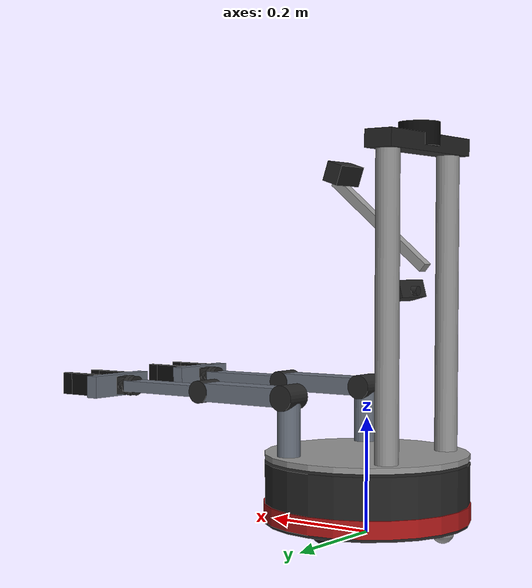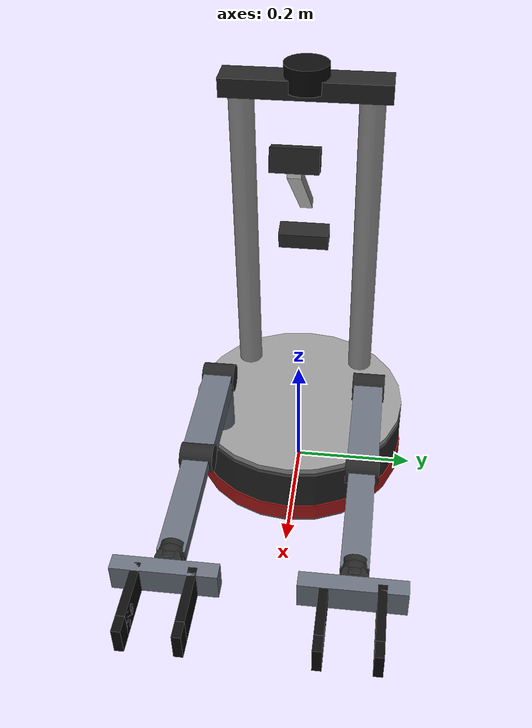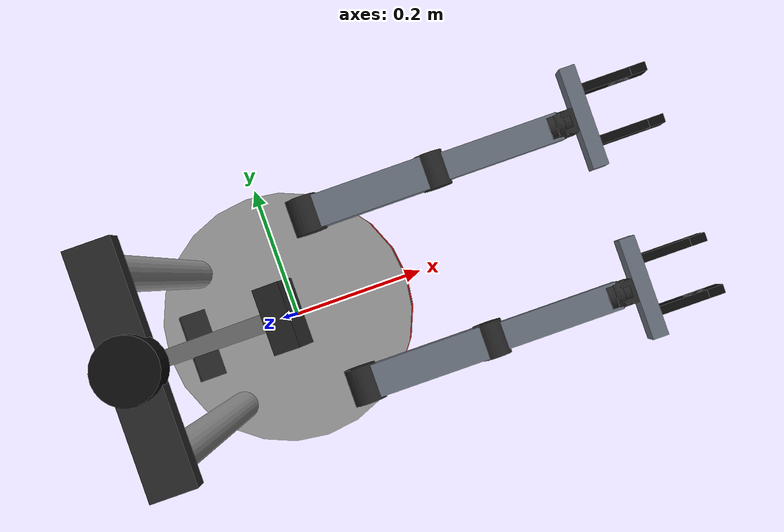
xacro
<?xml version="1.0"?>
<robot name="navigate_bimanual" xmlns:xacro="http://www.ros.org/wiki/xacro">

  <!-- ==================== base ==================== -->
  <xacro:property name="PI"             value="3.14159265358979"/>
  <xacro:property name="base_radius"    value="0.1775"/>
  <xacro:property name="base_body_z0"   value="0.020"/>
  <xacro:property name="base_body_top"  value="0.125"/>
  <xacro:property name="deck_top_z"     value="0.140"/>
  <xacro:property name="wheel_radius"   value="0.038"/>
  <xacro:property name="wheel_width"    value="0.030"/>
  <xacro:property name="wheel_sep"      value="0.230"/>
  <xacro:property name="caster_radius"  value="0.019"/>

  <!-- ==================== arms ==================== -->
  <xacro:property name="arm_mount_x"    value="0.080"/>
  <xacro:property name="arm_mount_y"    value="0.120"/>   <!-- separation 0.24, mount radius 0.144 -->
  <xacro:property name="shoulder_z"     value="0.240"/>
  <xacro:property name="L1"             value="0.180"/>
  <xacro:property name="L2"             value="0.180"/>
  <xacro:property name="LG"             value="0.070"/>   <!-- wrist -> grasp point -->

  <!-- joint limits -->
  <xacro:property name="yaw_lim"        value="2.618"/>   <!-- +/-150 deg -->
  <xacro:property name="pitch2_lim"     value="2.007"/>   <!-- +/-115 deg shoulder -->
  <!-- J2b, the seventh axis. A roll needs a wide range to be useful as a
       swivel; 175 deg keeps a stop short of the wrap so the joint never
       has two equivalent commands. -->
  <xacro:property name="roll2_lim" value="${175*PI/180}"/>
  <xacro:property name="pitch3_lim"     value="2.531"/>   <!-- +/-145 deg ELBOW -->
  <xacro:property name="wpitch_lim"     value="2.443"/>   <!-- +/-140 deg wrist pitch -->
  <xacro:property name="wroll_lim"      value="3.14159"/> <!-- +/-180 deg wrist rolls -->
  <xacro:property name="finger_travel"  value="0.065"/>

  <!-- ==================== sensors ==================== -->
  <xacro:property name="mast_x"         value="-0.100"/>
  <xacro:property name="lidar_z" value="0.68"/>
  <xacro:property name="cam_x"          value="-0.075"/>
  <xacro:property name="cam_z"          value="0.420"/>
  <xacro:property name="cam_pitch"      value="0.2618"/>

  <!-- ==================== materials ==================== -->
  <material name="dark_grey"><color rgba="0.15 0.15 0.15 1"/></material>
  <material name="light_grey"><color rgba="0.6 0.6 0.6 1"/></material>
  <material name="red_accent"><color rgba="0.7 0.1 0.1 1"/></material>
  <material name="arm_blue"><color rgba="0.42 0.45 0.50 1"/></material>
  <material name="black"><color rgba="0.05 0.05 0.05 1"/></material>

  <xacro:include filename="$(find navigate_description)/urdf/base.xacro"/>
  <xacro:include filename="$(find navigate_description)/urdf/mast_sensors.xacro"/>
  <xacro:include filename="$(find navigate_description)/urdf/arm.xacro"/>
  <xacro:include filename="$(find navigate_description)/urdf/ros2_control.xacro"/>
  <xacro:include filename="$(find navigate_description)/urdf/gazebo_plugins.xacro"/>

  <xacro:kobuki_base/>
  <xacro:mast_sensors/>
  <xacro:arm_6dof side="left"  reflect="1"  finger_effort="6.0"/>
  <xacro:arm_6dof side="right" reflect="-1" finger_effort="1.5"/>
  <xacro:bimanual_ros2_control/>
  <xacro:bimanual_gazebo/>

</robot>

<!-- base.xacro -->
<robot xmlns:xacro="http://www.ros.org/wiki/xacro">

  <!-- Simple cylinder inertia helper -->
  <xacro:macro name="cyl_inertial" params="m r h *origin">
    <inertial>
      <xacro:insert_block name="origin"/>
      <mass value="${m}"/>
      <inertia ixx="${m*(3*r*r+h*h)/12}" iyy="${m*(3*r*r+h*h)/12}"
               izz="${m*r*r/2}" ixy="0" ixz="0" iyz="0"/>
    </inertial>
  </xacro:macro>

  <xacro:macro name="box_inertial" params="m x y z *origin">
    <inertial>
      <xacro:insert_block name="origin"/>
      <mass value="${m}"/>
      <inertia ixx="${m*(y*y+z*z)/12}" iyy="${m*(x*x+z*z)/12}"
               izz="${m*(x*x+y*y)/12}" ixy="0" ixz="0" iyz="0"/>
    </inertial>
  </xacro:macro>

  <xacro:macro name="kobuki_base">

    <!-- base_footprint: ground projection; base_link co-located at ground
         level under the base center so all z values read as height AGL -->
    <link name="base_footprint"/>

    <joint name="base_footprint_joint" type="fixed">
      <parent link="base_footprint"/>
      <child link="base_link"/>
      <origin xyz="0 0 0" rpy="0 0 0"/>
    </joint>

    <link name="base_link">
      <visual>
        <origin xyz="0 0 ${(base_body_z0+base_body_top)/2}"/>
        <geometry><cylinder radius="${base_radius}" length="${base_body_top-base_body_z0}"/></geometry>
        <material name="dark_grey"/>
      </visual>
      <!-- red bumper ring, cosmetic kobuki look -->
      <visual>
        <origin xyz="0 0 ${base_body_z0+0.02}"/>
        <geometry><cylinder radius="${base_radius+0.002}" length="0.03"/></geometry>
        <material name="red_accent"/>
      </visual>
      <collision>
        <origin xyz="0 0 ${(base_body_z0+base_body_top)/2}"/>
        <geometry><cylinder radius="${base_radius}" length="${base_body_top-base_body_z0}"/></geometry>
      </collision>
      <xacro:cyl_inertial m="3.2" r="${base_radius}" h="${base_body_top-base_body_z0}">
        <origin xyz="0 0 ${(base_body_z0+base_body_top)/2}"/>
      </xacro:cyl_inertial>
    </link>

    <!-- arm mounting deck (hex on the real robot, cylinder here) -->
    <link name="deck_link">
      <visual>
        <origin xyz="0 0 -0.005"/>
        <geometry><cylinder radius="${base_radius}" length="0.01"/></geometry>
        <material name="light_grey"/>
      </visual>
      <collision>
        <origin xyz="0 0 -0.005"/>
        <geometry><cylinder radius="${base_radius}" length="0.01"/></geometry>
      </collision>
      <xacro:cyl_inertial m="0.4" r="${base_radius}" h="0.01">
        <origin xyz="0 0 -0.005"/>
      </xacro:cyl_inertial>
    </link>
    <joint name="deck_joint" type="fixed">
      <parent link="base_link"/>
      <child link="deck_link"/>
      <origin xyz="0 0 ${deck_top_z}"/>
    </joint>

    <!-- drive wheels -->
    <xacro:macro name="drive_wheel" params="prefix reflect">
      <link name="${prefix}_wheel_link">
        <visual>
          <origin rpy="${-PI/2} 0 0"/>
          <geometry><cylinder radius="${wheel_radius}" length="${wheel_width}"/></geometry>
          <material name="black"/>
        </visual>
        <collision>
          <origin rpy="${-PI/2} 0 0"/>
          <geometry><cylinder radius="${wheel_radius}" length="${wheel_width}"/></geometry>
        </collision>
        <inertial>
          <mass value="0.12"/>
          <inertia ixx="6e-5" iyy="6e-5" izz="9e-5" ixy="0" ixz="0" iyz="0"/>
        </inertial>
      </link>
      <joint name="${prefix}_wheel_joint" type="continuous">
        <parent link="base_link"/>
        <child link="${prefix}_wheel_link"/>
        <origin xyz="0 ${reflect*wheel_sep/2} ${wheel_radius}"/>
        <axis xyz="0 1 0"/>
      </joint>
      <gazebo reference="${prefix}_wheel_link">
        <mu1>1.0</mu1><mu2>1.0</mu2>
      </gazebo>
    </xacro:macro>
    <xacro:drive_wheel prefix="left"  reflect="1"/>
    <xacro:drive_wheel prefix="right" reflect="-1"/>

    <!-- front / rear casters: frictionless spheres -->
    <xacro:macro name="caster" params="prefix x">
      <link name="${prefix}_caster_link">
        <visual>
          <geometry><sphere radius="${caster_radius}"/></geometry>
          <material name="light_grey"/>
        </visual>
        <collision>
          <geometry><sphere radius="${caster_radius}"/></geometry>
        </collision>
        <inertial>
          <mass value="0.02"/>
          <inertia ixx="3e-6" iyy="3e-6" izz="3e-6" ixy="0" ixz="0" iyz="0"/>
        </inertial>
      </link>
      <joint name="${prefix}_caster_joint" type="fixed">
        <parent link="base_link"/>
        <child link="${prefix}_caster_link"/>
        <origin xyz="${x} 0 ${caster_radius}"/>
      </joint>
      <gazebo reference="${prefix}_caster_link">
        <mu1>0.0</mu1><mu2>0.0</mu2>
      </gazebo>
    </xacro:macro>
    <xacro:caster prefix="front" x="0.15"/>
    <xacro:caster prefix="rear"  x="-0.15"/>

  </xacro:macro>
  <gazebo reference="base_footprint">
    <sensor name="base_imu" type="imu">
      <always_on>true</always_on>
      <update_rate>100</update_rate>
      <topic>/imu</topic>
      <imu/>
    </sensor>
  </gazebo>

</robot>

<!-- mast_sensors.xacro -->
<robot xmlns:xacro="http://www.ros.org/wiki/xacro">

  <xacro:macro name="mast_sensors">

    <link name="mast_link">
      <!-- left rod at (-0.099, +0.099): r = sqrt(2)*0.099 = 0.14 m -->
      <visual>
        <origin xyz="0 0.099 ${(lidar_z-0.015-deck_top_z)/2}"/>
        <geometry><cylinder radius="0.020" length="${lidar_z-0.015-deck_top_z}"/></geometry>
        <material name="light_grey"/>
      </visual>
      <!-- right rod at (-0.099, -0.099) -->
      <visual>
        <origin xyz="0 -0.099 ${(lidar_z-0.015-deck_top_z)/2}"/>
        <geometry><cylinder radius="0.020" length="${lidar_z-0.015-deck_top_z}"/></geometry>
        <material name="light_grey"/>
      </visual>
      <!-- crossbar joining the rod tops -->
      <visual>
        <origin xyz="0 0 ${lidar_z-0.015-deck_top_z}"/>
        <geometry><box size="0.05 0.26 0.03"/></geometry>
        <material name="dark_grey"/>
      </visual>
      <!-- camera bracket reaching forward from the crossbar -->
      <visual>
        <origin xyz="${(cam_x-mast_x)/2} 0 ${cam_z-deck_top_z}" rpy="0 1.5708 0"/>
        <geometry><cylinder radius="0.008" length="${cam_x-mast_x}"/></geometry>
        <material name="dark_grey"/>
      </visual>
      <collision>
        <origin xyz="0 0.099 ${(lidar_z-0.015-deck_top_z)/2}"/>
        <geometry><cylinder radius="0.020" length="${lidar_z-0.015-deck_top_z}"/></geometry>
      </collision>
      <collision>
        <origin xyz="0 -0.099 ${(lidar_z-0.015-deck_top_z)/2}"/>
        <geometry><cylinder radius="0.020" length="${lidar_z-0.015-deck_top_z}"/></geometry>
      </collision>
      <collision>
        <origin xyz="0 0 ${lidar_z-0.015-deck_top_z}"/>
        <geometry><box size="0.05 0.26 0.03"/></geometry>
      </collision>
      <inertial>
        <origin xyz="0 0 ${(lidar_z-deck_top_z)/2}"/>
        <mass value="0.45"/>
        <inertia ixx="4e-3" iyy="4e-3" izz="4e-3" ixy="0" ixz="0" iyz="0"/>
      </inertial>
    </link>
    <joint name="mast_joint" type="fixed">
      <parent link="base_link"/>
      <child link="mast_link"/>
      <origin xyz="${mast_x} 0 ${deck_top_z}"/>
    </joint>

    <!-- ============ 2D LiDAR @ 0.46 m ============ -->
    <link name="lidar_link">
      <visual>
        <geometry><cylinder radius="0.035" length="0.04"/></geometry>
        <material name="black"/>
      </visual>
      <collision>
        <geometry><cylinder radius="0.035" length="0.04"/></geometry>
      </collision>
      <inertial>
        <mass value="0.15"/>
        <inertia ixx="1e-4" iyy="1e-4" izz="1e-4" ixy="0" ixz="0" iyz="0"/>
      </inertial>
    </link>
    <joint name="lidar_joint" type="fixed">
      <parent link="base_link"/>
      <child link="lidar_link"/>
      <origin xyz="${mast_x} 0 ${lidar_z}"/>
    </joint>

    <gazebo reference="lidar_link">
      <sensor name="lidar" type="gpu_lidar">
        <topic>scan</topic>
        <gz_frame_id>lidar_link</gz_frame_id>
        <update_rate>10</update_rate>
        <lidar>
          <scan>
            <horizontal>
              <samples>360</samples>
              <resolution>1</resolution>
              <min_angle>${-PI}</min_angle>
              <max_angle>${PI}</max_angle>
            </horizontal>
          </scan>
          <range>
            <min>0.12</min>
            <max>8.0</max>
            <resolution>0.01</resolution>
          </range>
        </lidar>
        <always_on>true</always_on>
        <visualize>false</visualize>
      </sensor>
    </gazebo>

    <!-- ============ RGB camera @ 0.42 m, 15 deg down ============ -->
    <link name="camera_link">
      <visual>
        <geometry><box size="0.03 0.08 0.03"/></geometry>
        <material name="dark_grey"/>
      </visual>
      <collision>
        <geometry><box size="0.03 0.08 0.03"/></geometry>
      </collision>
      <inertial>
        <mass value="0.08"/>
        <inertia ixx="5e-5" iyy="5e-5" izz="5e-5" ixy="0" ixz="0" iyz="0"/>
      </inertial>
    </link>
    <joint name="camera_joint" type="fixed">
      <parent link="base_link"/>
      <child link="camera_link"/>
      <origin xyz="${cam_x} 0 ${cam_z}" rpy="0 ${cam_pitch} 0"/>
    </joint>

    <gazebo reference="camera_link">
      <sensor name="camera" type="camera">
        <topic>camera</topic>
        <gz_frame_id>camera_link</gz_frame_id>
        <update_rate>15</update_rate>
        <camera>
          <camera_info_topic>camera_info</camera_info_topic>
          <horizontal_fov>1.204</horizontal_fov> <!-- 69 deg -->
          <image>
            <width>640</width>
            <height>480</height>
            <format>R8G8B8</format>
          </image>
          <clip><near>0.05</near><far>15.0</far></clip>
        </camera>
        <always_on>true</always_on>
        <visualize>false</visualize>
      </sensor>
    </gazebo>

    <link name="workspace_cam_link">
      <visual>
        <geometry><box size="0.035 0.070 0.030"/></geometry>
        <material name="dark_grey"/>
      </visual>
      <collision><geometry><box size="0.035 0.070 0.030"/></geometry></collision>
      <inertial>
        <mass value="0.08"/>
        <inertia ixx="5e-5" iyy="5e-5" izz="5e-5" ixy="0" ixz="0" iyz="0"/>
      </inertial>
    </link>
    <joint name="workspace_cam_joint" type="fixed">
      <parent link="base_link"/>
      <child link="workspace_cam_link"/>
      <origin xyz="0.05 0 0.62" rpy="0 1.244 0"/>
    </joint>

    <!-- boom holding it out and up from the mast, cosmetic -->
    <link name="cam_boom_link">
      <visual>
        <origin xyz="0.075 0 0.0875" rpy="0 -0.7 0"/>
        <geometry><box size="0.230 0.020 0.016"/></geometry>
        <material name="light_grey"/>
      </visual>
      <inertial>
        <mass value="0.10"/>
        <inertia ixx="1e-4" iyy="1e-4" izz="1e-4" ixy="0" ixz="0" iyz="0"/>
      </inertial>
    </link>
    <joint name="cam_boom_joint" type="fixed">
      <parent link="base_link"/>
      <child link="cam_boom_link"/>
      <origin xyz="-0.10 0 0.445"/>
    </joint>

    <gazebo reference="workspace_cam_link">
      <sensor name="workspace_cam" type="camera">
        <topic>workspace_cam</topic>
        <gz_frame_id>workspace_cam_link</gz_frame_id>
        <update_rate>15</update_rate>
        <camera>
          <camera_info_topic>workspace_cam_info</camera_info_topic>
          <horizontal_fov>1.204</horizontal_fov>
          <image><width>640</width><height>480</height><format>R8G8B8</format></image>
          <clip><near>0.05</near><far>5.0</far></clip>
        </camera>
        <always_on>true</always_on>
        <visualize>false</visualize>
      </sensor>
    </gazebo>

  </xacro:macro>
</robot>

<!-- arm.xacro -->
<robot xmlns:xacro="http://www.ros.org/wiki/xacro">

  <!-- where the suction cup sits along the finger: the object's equator -->
  <xacro:property name="RIDGE_X_CUP" value="0.065"/>

  <xacro:macro name="arm_6dof" params="side reflect finger_effort:=6.0">

    <!-- === J1 yaw + riser === -->
    <link name="${side}_shoulder_link">
      <visual>
        <origin xyz="0 0 0.05"/>
        <geometry><cylinder radius="0.020" length="0.10"/></geometry>
        <material name="arm_blue"/>
      </visual>
      <collision>
        <origin xyz="0 0 0.05"/>
        <geometry><cylinder radius="0.020" length="0.10"/></geometry>
      </collision>
      <xacro:cyl_inertial m="0.16" r="0.020" h="0.10">
        <origin xyz="0 0 0.05"/>
      </xacro:cyl_inertial>
    </link>
    <joint name="${side}_j1" type="revolute">
      <parent link="base_link"/>
      <child link="${side}_shoulder_link"/>
      <origin xyz="${arm_mount_x} ${reflect*arm_mount_y} ${deck_top_z}"/>
      <axis xyz="0 0 1"/>
      <limit lower="${-yaw_lim}" upper="${yaw_lim}" effort="12.0" velocity="3.0"/>
      <dynamics damping="0.7" friction="0.05"/>
    </joint>

    <!-- === J2 shoulder pitch + the pitch yoke === -->
    <link name="${side}_upper_yoke_link">
      <visual>
        <origin xyz="0 0 0" rpy="${PI/2} 0 0"/>
        <geometry><cylinder radius="0.022" length="0.05"/></geometry>
        <material name="dark_grey"/>
      </visual>
      <collision>
        <origin xyz="0 0 0" rpy="${PI/2} 0 0"/>
        <geometry><cylinder radius="0.022" length="0.05"/></geometry>
      </collision>
      <xacro:box_inertial m="0.12" x="0.044" y="0.05" z="0.044">
        <origin xyz="0 0 0"/>
      </xacro:box_inertial>
    </link>
    <joint name="${side}_j2" type="revolute">
      <parent link="${side}_shoulder_link"/>
      <child link="${side}_upper_yoke_link"/>
      <origin xyz="0 0 ${shoulder_z - deck_top_z}"/>
      <axis xyz="0 1 0"/>
      <limit lower="${-pitch2_lim}" upper="${pitch2_lim}" effort="12.0" velocity="3.0"/>
      <dynamics damping="0.7" friction="0.05"/>
    </joint>

    <!-- === J2b SHOULDER ROLL - THE SEVENTH AXIS === -->
    <link name="${side}_upper_arm_link">
      <visual>
        <origin xyz="${L1/2} 0 0"/>
        <geometry><box size="${L1} 0.045 0.032"/></geometry>
        <material name="arm_blue"/>
      </visual>
      <collision>
        <origin xyz="${L1/2} 0 0"/>
        <geometry><box size="${L1} 0.045 0.032"/></geometry>
      </collision>
      <xacro:box_inertial m="0.16" x="${L1}" y="0.045" z="0.032">
        <origin xyz="${L1/2} 0 0"/>
      </xacro:box_inertial>
    </link>
    <joint name="${side}_j2b" type="revolute">
      <parent link="${side}_upper_yoke_link"/>
      <child link="${side}_upper_arm_link"/>
      <origin xyz="0 0 0"/>
      <axis xyz="1 0 0"/>
      <limit lower="${-roll2_lim}" upper="${roll2_lim}" effort="12.0" velocity="3.0"/>
      <dynamics damping="0.7" friction="0.05"/>
    </joint>

    <!-- === J3 elbow + forearm === -->
    <link name="${side}_forearm_link">
      <visual>
        <origin xyz="0 0 0" rpy="${PI/2} 0 0"/>
        <geometry><cylinder radius="0.020" length="0.048"/></geometry>
        <material name="dark_grey"/>
      </visual>
      <visual>
        <origin xyz="${L2/2} 0 0"/>
        <geometry><box size="${L2} 0.038 0.020"/></geometry>
        <material name="arm_blue"/>
      </visual>
      <collision>
        <origin xyz="${L2/2} 0 0"/>
        <geometry><box size="${L2} 0.038 0.020"/></geometry>
      </collision>
      <xacro:box_inertial m="0.13" x="${L2}" y="0.038" z="0.020">
        <origin xyz="${L2/2} 0 0"/>
      </xacro:box_inertial>
    </link>
    <joint name="${side}_j3" type="revolute">
      <parent link="${side}_upper_arm_link"/>
      <child link="${side}_forearm_link"/>
      <origin xyz="${L1} 0 0"/>
      <axis xyz="0 1 0"/>
      <limit lower="${-pitch3_lim}" upper="${pitch3_lim}" effort="12.0" velocity="3.0"/>
      <dynamics damping="0.7" friction="0.05"/>
    </joint>

    <link name="${side}_wrist_roll_link">
      <visual>
        <geometry><cylinder radius="0.018" length="0.030"/></geometry>
        <origin rpy="0 ${PI/2} 0"/>
        <material name="dark_grey"/>
      </visual>
      <collision>
        <geometry><cylinder radius="0.018" length="0.030"/></geometry>
        <origin rpy="0 ${PI/2} 0"/>
      </collision>
      <inertial>
        <mass value="0.07"/>
        <inertia ixx="1.5e-5" iyy="1.5e-5" izz="1.5e-5" ixy="0" ixz="0" iyz="0"/>
      </inertial>
    </link>
    <joint name="${side}_j4" type="revolute">
      <parent link="${side}_forearm_link"/>
      <child link="${side}_wrist_roll_link"/>
      <origin xyz="${L2} 0 0"/>
      <axis xyz="1 0 0"/>
      <limit lower="${-wroll_lim}" upper="${wroll_lim}" effort="12.0" velocity="3.0"/>
      <dynamics damping="0.5" friction="0.05"/>
    </joint>

    <link name="${side}_wrist_pitch_link">
      <visual>
        <geometry><sphere radius="0.019"/></geometry>
        <material name="dark_grey"/>
      </visual>
      <collision><geometry><sphere radius="0.019"/></geometry></collision>
      <inertial>
        <mass value="0.07"/>
        <inertia ixx="1.5e-5" iyy="1.5e-5" izz="1.5e-5" ixy="0" ixz="0" iyz="0"/>
      </inertial>
    </link>
    <joint name="${side}_j5" type="revolute">
      <parent link="${side}_wrist_roll_link"/>
      <child link="${side}_wrist_pitch_link"/>
      <origin xyz="0 0 0"/>
      <axis xyz="0 1 0"/>
      <limit lower="${-wpitch_lim}" upper="${wpitch_lim}" effort="12.0" velocity="3.0"/>
      <dynamics damping="0.5" friction="0.05"/>
    </joint>

    <!-- === J6 tool roll + palm === -->
    <link name="${side}_palm_link">
      <visual>
        <origin xyz="0.016 0 0"/>
        <geometry><cylinder radius="0.017" length="0.032"/></geometry>
        <material name="dark_grey"/>
      </visual>
      <visual>
                  <origin xyz="0.032 0 0"/>
        <geometry><box size="0.022 0.140 0.040"/></geometry>
        <material name="arm_blue"/>
      </visual>
      <collision>
        <origin xyz="0.032 0 0"/>
        <geometry><box size="0.022 0.140 0.040"/></geometry>
      </collision>
      <xacro:box_inertial m="0.11" x="0.022" y="0.140" z="0.040">
        <origin xyz="0.032 0 0"/>
      </xacro:box_inertial>
    </link>
    <joint name="${side}_j6" type="revolute">
      <parent link="${side}_wrist_pitch_link"/>
      <child link="${side}_palm_link"/>
      <origin xyz="0 0 0"/>
      <axis xyz="1 0 0"/>
      <limit lower="${-wroll_lim}" upper="${wroll_lim}" effort="12.0" velocity="3.0"/>
      <dynamics damping="0.5" friction="0.05"/>
    </joint>

    <gazebo reference="${side}_j6">
      <sensor name="${side}_wrist_ft" type="force_torque">
        <always_on>true</always_on>
        <update_rate>100</update_rate>
        <topic>/ft/${side}</topic>
        <force_torque>
          <frame>child</frame>
          <measure_direction>parent_to_child</measure_direction>
        </force_torque>
      </sensor>
    </gazebo>

    <!-- === fingers: prismatic along the palm's y === -->
    <xacro:macro name="finger" params="side fprefix faxis finger_effort">
      <link name="${side}_finger_${fprefix}_link">

        <visual>
          <origin xyz="0.040 0 0"/>
          <geometry><box size="0.080 0.012 0.040"/></geometry>
          <material name="black"/>
        </visual>
        <visual>
          <origin xyz="${RIDGE_X_CUP} ${-faxis * 0.004} 0" rpy="${PI/2} 0 0"/>
          <geometry><cylinder radius="0.015" length="0.004"/></geometry>
          <material name="black"/>
        </visual>
        <collision>
          <origin xyz="0.040 0 0"/>
          <geometry><box size="0.080 0.012 0.040"/></geometry>
        </collision>
        <inertial>
          <mass value="0.03"/>
          <inertia ixx="1.6e-5" iyy="8e-6" izz="8e-6" ixy="0" ixz="0" iyz="0"/>
        </inertial>
      </link>
      <link name="${side}_finger_${fprefix}_tip_link">
        <visual>
          <origin xyz="0.011 0 0"/>
          <geometry><box size="0.022 0.012 0.040"/></geometry>
          <material name="black"/>
        </visual>
        <collision>
          <origin xyz="0.011 0 0"/>
          <geometry><box size="0.022 0.012 0.040"/></geometry>
        </collision>
        <inertial>
          <mass value="0.012"/>
          <inertia ixx="4e-6" iyy="2e-6" izz="2e-6" ixy="0" ixz="0" iyz="0"/>
        </inertial>
      </link>
      <joint name="${side}_finger_${fprefix}_tip_joint" type="revolute">
        <parent link="${side}_finger_${fprefix}_link"/>
        <child link="${side}_finger_${fprefix}_tip_link"/>
        <!-- hinged at the far end of the proximal plate -->
        <origin xyz="0.080 0 0"/>
        <!-- about the object's axis, signed so POSITIVE always curls inward -->
        <axis xyz="0 0 ${-faxis}"/>
        <limit lower="0.0" upper="0.70" effort="${finger_effort}" velocity="1.5"/>
        <dynamics damping="0.3" friction="0.05"/>
      </joint>
      <gazebo reference="${side}_finger_${fprefix}_tip_link">
        <mu1>2.2</mu1><mu2>2.2</mu2>
        <sensor name="${side}_finger_${fprefix}_tip_contact" type="contact">
          <always_on>true</always_on>
          <update_rate>50</update_rate>
          <contact>
            <collision>${side}_finger_${fprefix}_tip_link_collision</collision>
          </contact>
          <topic>/contact/${side}_finger_${fprefix}_tip</topic>
        </sensor>
      </gazebo>

      <joint name="${side}_finger_${fprefix}_joint" type="prismatic">
        <parent link="${side}_palm_link"/>
        <child link="${side}_finger_${fprefix}_link"/>
        <origin xyz="0.030 0 0"/>
        <axis xyz="0 ${faxis} 0"/>
            <limit lower="0.008" upper="${finger_travel}" effort="${finger_effort}" velocity="0.10"/>
        <dynamics damping="0.5" friction="0.1"/>
      </joint>
      <gazebo reference="${side}_finger_${fprefix}_link">
        <!-- (the cup geometry is declared on the link itself, above) -->
          <mu1>2.2</mu1><mu2>2.2</mu2>
        <sensor name="${side}_finger_${fprefix}_contact" type="contact">
          <always_on>true</always_on>
          <update_rate>50</update_rate>
          <contact>
            <collision>${side}_finger_${fprefix}_link_collision</collision>
          </contact>
          <topic>/contact/${side}_finger_${fprefix}</topic>
        </sensor>
      </gazebo>
    </xacro:macro>
    <xacro:finger side="${side}" fprefix="l" faxis="1" finger_effort="${finger_effort}"/>
    <xacro:finger side="${side}" fprefix="r" faxis="-1" finger_effort="${finger_effort}"/>

  </xacro:macro>
</robot>
